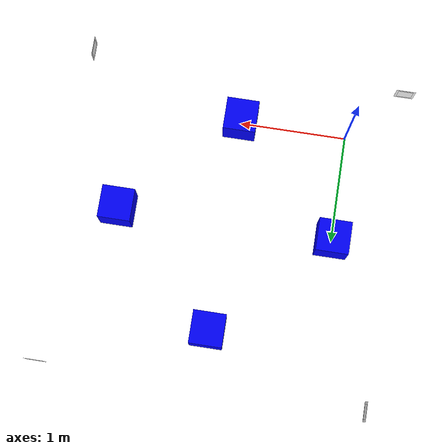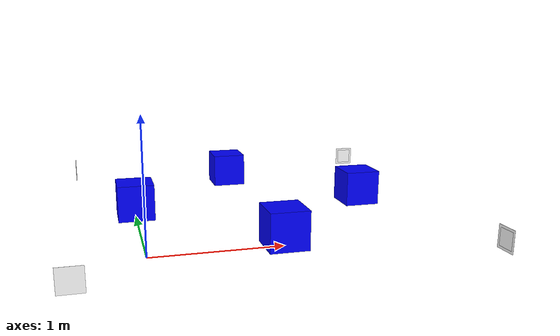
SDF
<sdf version="1.4">
 <world name="default">
  <physics name="1ms" type="ignored">
   <max_step_size>0.001</max_step_size>
   <real_time_factor>1.0</real_time_factor>
  </physics>
  <plugin filename="gz-sim-physics-system" name="gz::sim::systems::Physics"/>
  <plugin filename="gz-sim-user-commands-system" name="gz::sim::systems::UserCommands"/>
  <plugin filename="gz-sim-scene-broadcaster-system" name="gz::sim::systems::SceneBroadcaster"/>
  <plugin filename="gz-sim-sensors-system" name="gz::sim::systems::Sensors">
   <render_engine>ogre2</render_engine>
  </plugin>
  <scene><ambient>0 0 0 1</ambient><background>0.7 0.7 0.7 1</background><shadows>0</shadows></scene>
  <light name="point_light_0" type="point">
   <pose>1 -1 1 0 0 0</pose>
   <diffuse>0.5 0.5 0.5 1</diffuse>
   <specular>0.3 0.3 0.3 1</specular>
   <attenuation>
    <range>20</range>
    <constant>0.5</constant>
    <linear>0.01</linear>
    <quadratic>0.001</quadratic>
   </attenuation>
   <cast_shadows>0</cast_shadows>
   <direction>-0.3 0.3 -1</direction>
  </light>
  <light name="point_light_1" type="point">
   <pose>-1 1 1 0 0 0</pose>
   <diffuse>0.5 0.5 0.5 1</diffuse>
   <specular>0.3 0.3 0.3 1</specular>
   <attenuation>
    <range>20</range>
    <constant>0.5</constant>
    <linear>0.01</linear>
    <quadratic>0.001</quadratic>
   </attenuation>
   <cast_shadows>0</cast_shadows>
   <direction>0.3 -0.3 -1</direction>
  </light>
  <include>
   <name>marker_0</name>
   <uri>model://aruco_marker_0</uri>
   <pose>2.5 -0.5 0.091 0 0 3.141592654</pose>
  </include>
  <include><name>marker_1</name><uri>model://aruco_marker_1</uri><pose>2.5 2.5 0.091 0 0 4.7123</pose></include>
  <include><name>marker_2</name><uri>model://aruco_marker_2</uri><pose>-0.5 2.5 0.091 0 0 0</pose></include>
  <include>
   <name>marker_3</name>
   <uri>model://aruco_marker_3</uri>
   <pose>-0.5 -0.5 0.091 0 0 1.5708</pose>
  </include>
  <model name="box1">
   <pose>1.0 0.0 0.15 0 0 0</pose>
   <static>true</static>
   <link name="link">
    <collision name="col"><geometry><box><size>0.3 0.3 0.3</size></box></geometry></collision>
    <visual name="vis">
     <geometry><box><size>0.3 0.3 0.3</size></box></geometry>
     <material><ambient>0 0 1 1</ambient><diffuse>0 0 1 1</diffuse></material>
    </visual>
   </link>
  </model>
  <model name="box2">
   <pose>2.0 1.0 0.15 0 0 0</pose>
   <static>true</static>
   <link name="link">
    <collision name="col"><geometry><box><size>0.3 0.3 0.3</size></box></geometry></collision>
    <visual name="vis">
     <geometry><box><size>0.3 0.3 0.3</size></box></geometry>
     <material><ambient>0 0 1 1</ambient><diffuse>0 0 1 1</diffuse></material>
    </visual>
   </link>
  </model>
  <model name="box3">
   <pose>1.0 2.0 0.15 0 0 0</pose>
   <static>true</static>
   <link name="link">
    <collision name="col"><geometry><box><size>0.3 0.3 0.3</size></box></geometry></collision>
    <visual name="vis">
     <geometry><box><size>0.3 0.3 0.3</size></box></geometry>
     <material><ambient>0 0 1 1</ambient><diffuse>0 0 1 1</diffuse></material>
    </visual>
   </link>
  </model>
  <model name="box4">
   <pose>0.0 1.0 0.15 0 0 0</pose>
   <static>true</static>
   <link name="link">
    <collision name="col"><geometry><box><size>0.3 0.3 0.3</size></box></geometry></collision>
    <visual name="vis">
     <geometry><box><size>0.3 0.3 0.3</size></box></geometry>
     <material><ambient>0 0 1 1</ambient><diffuse>0 0 1 1</diffuse></material>
    </visual>
   </link>
  </model>
 </world>
</sdf>

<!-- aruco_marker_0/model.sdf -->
<sdf version="1.5">
    <model name='aruco_marker_1'>
    <pose>0 0 0 0 0 0</pose>
    <static>true</static>
        <link name='link'>
            <inertial>
                <pose>0 0 0 0 -0 0</pose>
                <mass>0.281</mass>
                <inertia>
                    <ixx>0.0006167</ixx>
                    <ixy>0</ixy>
                    <ixz>0</ixz>
                    <iyy>0.0006167</iyy>
                    <iyz>0</iyz>
                    <izz>0.0006167</izz>
                </inertia>
            </inertial>

            <visual name='box_visual'>
                <cast_shadows>0</cast_shadows>
                    <geometry>
                        <box>
                            <size>0.001 0.18 0.18</size>
                        </box>
                    </geometry>
                <material>
                    <ambient>1 1 1 1</ambient>
                    <diffuse>1 1 1 1</diffuse>
                    <specular>1 1 1 1</specular>
                    <emissive>0.6 0.6 0.6 1</emissive>
                </material>
            </visual>

            <visual name='aruco_visual1'>
                <cast_shadows>0</cast_shadows>
                <pose>0.00065 0.0 0.0 1.5708 0.0 1.5708</pose>
                <geometry>
                    <plane>
                        <normal>0 0 1</normal>
                        <size>0.14 0.14</size>
                    </plane>
                </geometry>
                <material>
                    <pbr>
                        <metal>
                            <albedo_map>model://aruco_marker_0/materials/textures/marker0.png</albedo_map>
                            <normal_map>model://aruco_marker_0/materials/textures/marker0.png</normal_map>
                        </metal>
                    </pbr>
                    <ambient>1 1 1 1</ambient>
                    <diffuse>1 1 1 1</diffuse>
                    <specular>1 1 1 1</specular>
                    <emissive>0.0 0.0 0.0 1</emissive>
                </material>
            </visual>

        </link>
    </model>
</sdf>

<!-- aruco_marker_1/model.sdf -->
<sdf version="1.5">

    <model name='aruco_marker_2'>
        <pose>0 0 0 0 0 0</pose>
        <static>true</static>
        <link name='link'>
            <inertial>
                <pose>0 0 0 0 -0 0</pose>
                <mass>0.281</mass>
                <inertia>
                    <ixx>0.0006167</ixx>
                    <ixy>0</ixy>
                    <ixz>0</ixz>
                    <iyy>0.0006167</iyy>
                    <iyz>0</iyz>
                    <izz>0.0006167</izz>
                </inertia>
            </inertial>

            <visual name='box_visual'>
                <cast_shadows>0</cast_shadows>
                    <geometry>
                        <box>
                            <size>0.001 0.18 0.18</size>
                        </box>
                    </geometry>
                    <material>
                    <ambient>1 1 1 1</ambient>
                    <diffuse>1 1 1 1</diffuse>
                    <specular>1 1 1 1</specular>
                    <emissive>0.6 0.6 0.6 1</emissive>
                </material>
            </visual>

            <visual name='aruco_visual1'>
                <cast_shadows>0</cast_shadows>
                <pose>0.00065 0.0 0.0 1.5708 0.0 1.5708</pose>
                <geometry>
                    <plane>
                        <normal>0 0 1</normal>
                        <size>0.14 0.14</size>
                    </plane>
                </geometry>
                <material>
                    <pbr>
                        <metal>
                            <albedo_map>model://aruco_marker_1/materials/textures/marker1.png</albedo_map>
                            <normal_map>model://aruco_marker_1/materials/textures/marker1.png</normal_map>
                        </metal>
                    </pbr>
                    <ambient>1 1 1 1</ambient>
                    <diffuse>1 1 1 1</diffuse>
                    <specular>1 1 1 1</specular>
                    <emissive>0.0 0.0 0.0 1</emissive>
                </material>
            </visual>

        </link>
    </model>
</sdf>

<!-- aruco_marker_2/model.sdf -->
<sdf version="1.5">

    <model name='aruco_marker_3'>
        <pose>0 0 0 0 0 0</pose>
        <static>true</static>
        <link name='link'>
            <inertial>
                <pose>0 0 0 0 -0 0</pose>
                <mass>0.281</mass>
                <inertia>
                    <ixx>0.0006167</ixx>
                    <ixy>0</ixy>
                    <ixz>0</ixz>
                    <iyy>0.0006167</iyy>
                    <iyz>0</iyz>
                    <izz>0.0006167</izz>
                </inertia>
            </inertial>

            <visual name='box_visual'>
                <cast_shadows>0</cast_shadows>
                    <geometry>
                        <box>
                            <size>0.001 0.18 0.18</size>
                        </box>
                    </geometry>
                <material>
                    <ambient>1 1 1 1</ambient>
                    <diffuse>1 1 1 1</diffuse>
                    <specular>1 1 1 1</specular>
                    <emissive>0.6 0.6 0.6 1</emissive>
                </material>
            </visual>

            <visual name='aruco_visual1'>
                <cast_shadows>0</cast_shadows>
                <pose>0.00065 0.0 0.0 1.5708 0.0 1.5708</pose>
                <geometry>
                    <plane>
                        <normal>0 0 1</normal>
                        <size>0.14 0.14</size>
                    </plane>
                </geometry>
                <material>
                    <pbr>
                        <metal>
                            <albedo_map>model://aruco_marker_2/materials/textures/marker2.png</albedo_map>
                            <normal_map>model://aruco_marker_2/materials/textures/marker2.png</normal_map>
                        </metal>
                    </pbr>
                    <ambient>1 1 1 1</ambient>
                    <diffuse>1 1 1 1</diffuse>
                    <specular>1 1 1 1</specular>
                    <emissive>0.0 0.0 0.0 1</emissive>
                </material>
            </visual>

        </link>
    </model>
</sdf>

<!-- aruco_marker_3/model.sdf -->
<sdf version="1.5">

    <model name='aruco_marker_4'>
        <pose>0 0 0 0 0 0</pose>
        <static>true</static>
        <link name='link'>
            <inertial>
                <pose>0 0 0 0 -0 0</pose>
                <mass>0.281</mass>
                <inertia>
                    <ixx>0.0006167</ixx>
                    <ixy>0</ixy>
                    <ixz>0</ixz>
                    <iyy>0.0006167</iyy>
                    <iyz>0</iyz>
                    <izz>0.0006167</izz>
                </inertia>
            </inertial>

            <visual name='box_visual'>
                <cast_shadows>0</cast_shadows>
                    <geometry>
                        <box>
                            <size>0.001 0.18 0.18</size>
                        </box>
                    </geometry>
                <material>
                    <ambient>1 1 1 1</ambient>
                    <diffuse>1 1 1 1</diffuse>
                    <specular>1 1 1 1</specular>
                    <emissive>0.6 0.6 0.6 1</emissive>
                </material>
            </visual>

            <visual name='aruco_visual1'>
                <cast_shadows>0</cast_shadows>
                <pose>0.00065 0.0 0.0 1.5708 0.0 1.5708</pose>
                <geometry>
                    <plane>
                        <normal>0 0 1</normal>
                        <size>0.14 0.14</size>
                    </plane>
                </geometry>
                <material>
                    <pbr>
                        <metal>
                            <albedo_map>model://aruco_marker_3/materials/textures/marker3.png</albedo_map>
                            <normal_map>model://aruco_marker_3/materials/textures/marker3.png</normal_map>
                        </metal>
                    </pbr>
                    <ambient>1 1 1 1</ambient>
                    <diffuse>1 1 1 1</diffuse>
                    <specular>1 1 1 1</specular>
                    <emissive>0.0 0.0 0.0 1</emissive>
                </material>
            </visual>

        </link>
    </model>
</sdf>
